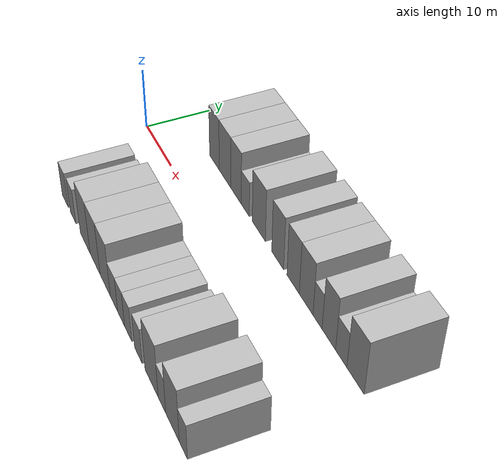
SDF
<sdf version="1.6">
 <world name="default">
  <model name="building_1">
   <static>1</static>
   <pose>11.8167 11.0000 0 0.000000 0.000000 1.570796</pose>
   <link name="link">
    <pose>0 0 4.50 0 0 0</pose>
    <collision name="collision"><geometry><box><size>10.0000 3.6334 9.0000</size></box></geometry></collision>
    <visual name="visual">
     <cast_shadows>0</cast_shadows>
     <geometry><box><size>10.0000 3.6334 9.0000</size></box></geometry>
     <material>
      <script>
       <uri>model://HANNAS_wall/materials/scripts</uri>
       <uri>model://HANNAS_wall/materials/textures</uri>
       <name>vrc/HANNAS_wall</name>
      </script>
     </material>
    </visual>
   </link>
  </model>
  <model name="building_2">
   <static>1</static>
   <pose>15.7360 11.0000 0 0.000000 0.000000 1.570796</pose>
   <link name="link">
    <pose>0 0 4.50 0 0 0</pose>
    <collision name="collision"><geometry><box><size>10.0000 4.2052 9.0000</size></box></geometry></collision>
    <visual name="visual">
     <cast_shadows>0</cast_shadows>
     <geometry><box><size>10.0000 4.2052 9.0000</size></box></geometry>
     <material>
      <script>
       <uri>model://HANNAS_wall/materials/scripts</uri>
       <uri>model://HANNAS_wall/materials/textures</uri>
       <name>vrc/HANNAS_wall</name>
      </script>
     </material>
    </visual>
   </link>
  </model>
  <model name="building_3">
   <static>1</static>
   <pose>19.6542 11.0000 0 0.000000 0.000000 1.570796</pose>
   <link name="link">
    <pose>0 0 4.50 0 0 0</pose>
    <collision name="collision"><geometry><box><size>10.0000 3.6313 9.0000</size></box></geometry></collision>
    <visual name="visual">
     <cast_shadows>0</cast_shadows>
     <geometry><box><size>10.0000 3.6313 9.0000</size></box></geometry>
     <material>
      <script>
       <uri>model://HANNAS_wall/materials/scripts</uri>
       <uri>model://HANNAS_wall/materials/textures</uri>
       <name>vrc/HANNAS_wall</name>
      </script>
     </material>
    </visual>
   </link>
  </model>
  <model name="building_4">
   <static>1</static>
   <pose>22.8331 11.0000 0 0.000000 0.000000 1.570796</pose>
   <link name="link">
    <pose>0 0 3.00 0 0 0</pose>
    <collision name="collision"><geometry><box><size>10.0000 2.7264 6.0000</size></box></geometry></collision>
    <visual name="visual">
     <cast_shadows>0</cast_shadows>
     <geometry><box><size>10.0000 2.7264 6.0000</size></box></geometry>
     <material>
      <script>
       <uri>model://HANNAS_wall/materials/scripts</uri>
       <uri>model://HANNAS_wall/materials/textures</uri>
       <name>vrc/HANNAS_wall</name>
      </script>
     </material>
    </visual>
   </link>
  </model>
  <model name="building_5">
   <static>1</static>
   <pose>27.3559 11.0000 0 0.000000 0.000000 1.570796</pose>
   <link name="link">
    <pose>0 0 4.50 0 0 0</pose>
    <collision name="collision"><geometry><box><size>10.0000 4.3192 9.0000</size></box></geometry></collision>
    <visual name="visual">
     <cast_shadows>0</cast_shadows>
     <geometry><box><size>10.0000 4.3192 9.0000</size></box></geometry>
     <material>
      <script>
       <uri>model://HANNAS_wall/materials/scripts</uri>
       <uri>model://HANNAS_wall/materials/textures</uri>
       <name>vrc/HANNAS_wall</name>
      </script>
     </material>
    </visual>
   </link>
  </model>
  <model name="building_6">
   <static>1</static>
   <pose>33.3677 11.0000 0 0.000000 0.000000 1.570796</pose>
   <link name="link">
    <pose>0 0 4.50 0 0 0</pose>
    <collision name="collision"><geometry><box><size>10.0000 3.7043 9.0000</size></box></geometry></collision>
    <visual name="visual">
     <cast_shadows>0</cast_shadows>
     <geometry><box><size>10.0000 3.7043 9.0000</size></box></geometry>
     <material>
      <script>
       <uri>model://HANNAS_wall/materials/scripts</uri>
       <uri>model://HANNAS_wall/materials/textures</uri>
       <name>vrc/HANNAS_wall</name>
      </script>
     </material>
    </visual>
   </link>
  </model>
  <model name="building_7">
   <static>1</static>
   <pose>38.0490 11.0000 0 0.000000 0.000000 1.570796</pose>
   <link name="link">
    <pose>0 0 4.50 0 0 0</pose>
    <collision name="collision"><geometry><box><size>10.0000 3.6584 9.0000</size></box></geometry></collision>
    <visual name="visual">
     <cast_shadows>0</cast_shadows>
     <geometry><box><size>10.0000 3.6584 9.0000</size></box></geometry>
     <material>
      <script>
       <uri>model://HANNAS_wall/materials/scripts</uri>
       <uri>model://HANNAS_wall/materials/textures</uri>
       <name>vrc/HANNAS_wall</name>
      </script>
     </material>
    </visual>
   </link>
  </model>
  <model name="building_8">
   <static>1</static>
   <pose>41.8445 11.0000 0 0.000000 0.000000 1.570796</pose>
   <link name="link">
    <pose>0 0 4.50 0 0 0</pose>
    <collision name="collision"><geometry><box><size>10.0000 3.9326 9.0000</size></box></geometry></collision>
    <visual name="visual">
     <cast_shadows>0</cast_shadows>
     <geometry><box><size>10.0000 3.9326 9.0000</size></box></geometry>
     <material>
      <script>
       <uri>model://HANNAS_wall/materials/scripts</uri>
       <uri>model://HANNAS_wall/materials/textures</uri>
       <name>vrc/HANNAS_wall</name>
      </script>
     </material>
    </visual>
   </link>
  </model>
  <model name="building_9">
   <static>1</static>
   <pose>45.0715 11.0000 0 0.000000 0.000000 1.570796</pose>
   <link name="link">
    <pose>0 0 3.00 0 0 0</pose>
    <collision name="collision"><geometry><box><size>10.0000 2.5213 6.0000</size></box></geometry></collision>
    <visual name="visual">
     <cast_shadows>0</cast_shadows>
     <geometry><box><size>10.0000 2.5213 6.0000</size></box></geometry>
     <material>
      <script>
       <uri>model://HANNAS_wall/materials/scripts</uri>
       <uri>model://HANNAS_wall/materials/textures</uri>
       <name>vrc/HANNAS_wall</name>
      </script>
     </material>
    </visual>
   </link>
  </model>
  <model name="building_10">
   <static>1</static>
   <pose>48.1417 11.0000 0 0.000000 0.000000 1.570796</pose>
   <link name="link">
    <pose>0 0 4.50 0 0 0</pose>
    <collision name="collision"><geometry><box><size>10.0000 3.6191 9.0000</size></box></geometry></collision>
    <visual name="visual">
     <cast_shadows>0</cast_shadows>
     <geometry><box><size>10.0000 3.6191 9.0000</size></box></geometry>
     <material>
      <script>
       <uri>model://HANNAS_wall/materials/scripts</uri>
       <uri>model://HANNAS_wall/materials/textures</uri>
       <name>vrc/HANNAS_wall</name>
      </script>
     </material>
    </visual>
   </link>
  </model>
  <model name="building_11">
   <static>1</static>
   <pose>51.4159 11.0000 0 0.000000 0.000000 1.570796</pose>
   <link name="link">
    <pose>0 0 3.00 0 0 0</pose>
    <collision name="collision"><geometry><box><size>10.0000 2.9294 6.0000</size></box></geometry></collision>
    <visual name="visual">
     <cast_shadows>0</cast_shadows>
     <geometry><box><size>10.0000 2.9294 6.0000</size></box></geometry>
     <material>
      <script>
       <uri>model://HANNAS_wall/materials/scripts</uri>
       <uri>model://HANNAS_wall/materials/textures</uri>
       <name>vrc/HANNAS_wall</name>
      </script>
     </material>
    </visual>
   </link>
  </model>
  <model name="building_12">
   <static>1</static>
   <pose>55.0609 11.0000 0 0.000000 0.000000 1.570796</pose>
   <link name="link">
    <pose>0 0 4.50 0 0 0</pose>
    <collision name="collision"><geometry><box><size>10.0000 4.3606 9.0000</size></box></geometry></collision>
    <visual name="visual">
     <cast_shadows>0</cast_shadows>
     <geometry><box><size>10.0000 4.3606 9.0000</size></box></geometry>
     <material>
      <script>
       <uri>model://HANNAS_wall/materials/scripts</uri>
       <uri>model://HANNAS_wall/materials/textures</uri>
       <name>vrc/HANNAS_wall</name>
      </script>
     </material>
    </visual>
   </link>
  </model>
  <model name="building_51">
   <static>1</static>
   <pose>11.3902 -11.0000 0 0.000000 0.000000 1.570796</pose>
   <link name="link">
    <pose>0 0 3.00 0 0 0</pose>
    <collision name="collision"><geometry><box><size>10.0000 2.7803 6.0000</size></box></geometry></collision>
    <visual name="visual">
     <cast_shadows>0</cast_shadows>
     <geometry><box><size>10.0000 2.7803 6.0000</size></box></geometry>
     <material>
      <script>
       <uri>model://HANNAS_wall/materials/scripts</uri>
       <uri>model://HANNAS_wall/materials/textures</uri>
       <name>vrc/HANNAS_wall</name>
      </script>
     </material>
    </visual>
   </link>
  </model>
  <model name="building_52">
   <static>1</static>
   <pose>15.0646 -11.0000 0 0.000000 0.000000 1.570796</pose>
   <link name="link">
    <pose>0 0 3.00 0 0 0</pose>
    <collision name="collision"><geometry><box><size>10.0000 2.5684 6.0000</size></box></geometry></collision>
    <visual name="visual">
     <cast_shadows>0</cast_shadows>
     <geometry><box><size>10.0000 2.5684 6.0000</size></box></geometry>
     <material>
      <script>
       <uri>model://HANNAS_wall/materials/scripts</uri>
       <uri>model://HANNAS_wall/materials/textures</uri>
       <name>vrc/HANNAS_wall</name>
      </script>
     </material>
    </visual>
   </link>
  </model>
  <model name="building_53">
   <static>1</static>
   <pose>20.4821 -11.0000 0 0.000000 0.000000 1.570796</pose>
   <link name="link">
    <pose>0 0 4.50 0 0 0</pose>
    <collision name="collision"><geometry><box><size>10.0000 4.2666 9.0000</size></box></geometry></collision>
    <visual name="visual">
     <cast_shadows>0</cast_shadows>
     <geometry><box><size>10.0000 4.2666 9.0000</size></box></geometry>
     <material>
      <script>
       <uri>model://HANNAS_wall/materials/scripts</uri>
       <uri>model://HANNAS_wall/materials/textures</uri>
       <name>vrc/HANNAS_wall</name>
      </script>
     </material>
    </visual>
   </link>
  </model>
  <model name="building_54">
   <static>1</static>
   <pose>24.7243 -11.0000 0 0.000000 0.000000 1.570796</pose>
   <link name="link">
    <pose>0 0 4.50 0 0 0</pose>
    <collision name="collision"><geometry><box><size>10.0000 4.2177 9.0000</size></box></geometry></collision>
    <visual name="visual">
     <cast_shadows>0</cast_shadows>
     <geometry><box><size>10.0000 4.2177 9.0000</size></box></geometry>
     <material>
      <script>
       <uri>model://HANNAS_wall/materials/scripts</uri>
       <uri>model://HANNAS_wall/materials/textures</uri>
       <name>vrc/HANNAS_wall</name>
      </script>
     </material>
    </visual>
   </link>
  </model>
  <model name="building_55">
   <static>1</static>
   <pose>28.8939 -11.0000 0 0.000000 0.000000 1.570796</pose>
   <link name="link">
    <pose>0 0 4.50 0 0 0</pose>
    <collision name="collision"><geometry><box><size>10.0000 4.1216 9.0000</size></box></geometry></collision>
    <visual name="visual">
     <cast_shadows>0</cast_shadows>
     <geometry><box><size>10.0000 4.1216 9.0000</size></box></geometry>
     <material>
      <script>
       <uri>model://HANNAS_wall/materials/scripts</uri>
       <uri>model://HANNAS_wall/materials/textures</uri>
       <name>vrc/HANNAS_wall</name>
      </script>
     </material>
    </visual>
   </link>
  </model>
  <model name="building_56">
   <static>1</static>
   <pose>32.3913 -11.0000 0 0.000000 0.000000 1.570796</pose>
   <link name="link">
    <pose>0 0 3.00 0 0 0</pose>
    <collision name="collision"><geometry><box><size>10.0000 2.8733 6.0000</size></box></geometry></collision>
    <visual name="visual">
     <cast_shadows>0</cast_shadows>
     <geometry><box><size>10.0000 2.8733 6.0000</size></box></geometry>
     <material>
      <script>
       <uri>model://HANNAS_wall/materials/scripts</uri>
       <uri>model://HANNAS_wall/materials/textures</uri>
       <name>vrc/HANNAS_wall</name>
      </script>
     </material>
    </visual>
   </link>
  </model>
  <model name="building_57">
   <static>1</static>
   <pose>35.1243 -11.0000 0 0.000000 0.000000 1.570796</pose>
   <link name="link">
    <pose>0 0 3.00 0 0 0</pose>
    <collision name="collision"><geometry><box><size>10.0000 2.5926 6.0000</size></box></geometry></collision>
    <visual name="visual">
     <cast_shadows>0</cast_shadows>
     <geometry><box><size>10.0000 2.5926 6.0000</size></box></geometry>
     <material>
      <script>
       <uri>model://HANNAS_wall/materials/scripts</uri>
       <uri>model://HANNAS_wall/materials/textures</uri>
       <name>vrc/HANNAS_wall</name>
      </script>
     </material>
    </visual>
   </link>
  </model>
  <model name="building_58">
   <static>1</static>
   <pose>37.7708 -11.0000 0 0.000000 0.000000 1.570796</pose>
   <link name="link">
    <pose>0 0 3.00 0 0 0</pose>
    <collision name="collision"><geometry><box><size>10.0000 2.7005 6.0000</size></box></geometry></collision>
    <visual name="visual">
     <cast_shadows>0</cast_shadows>
     <geometry><box><size>10.0000 2.7005 6.0000</size></box></geometry>
     <material>
      <script>
       <uri>model://HANNAS_wall/materials/scripts</uri>
       <uri>model://HANNAS_wall/materials/textures</uri>
       <name>vrc/HANNAS_wall</name>
      </script>
     </material>
    </visual>
   </link>
  </model>
  <model name="building_59">
   <static>1</static>
   <pose>41.4705 -11.0000 0 0.000000 0.000000 1.570796</pose>
   <link name="link">
    <pose>0 0 3.00 0 0 0</pose>
    <collision name="collision"><geometry><box><size>10.0000 2.6989 6.0000</size></box></geometry></collision>
    <visual name="visual">
     <cast_shadows>0</cast_shadows>
     <geometry><box><size>10.0000 2.6989 6.0000</size></box></geometry>
     <material>
      <script>
       <uri>model://HANNAS_wall/materials/scripts</uri>
       <uri>model://HANNAS_wall/materials/textures</uri>
       <name>vrc/HANNAS_wall</name>
      </script>
     </material>
    </visual>
   </link>
  </model>
  <model name="building_60">
   <static>1</static>
   <pose>46.0555 -11.0000 0 0.000000 0.000000 1.570796</pose>
   <link name="link">
    <pose>0 0 4.50 0 0 0</pose>
    <collision name="collision"><geometry><box><size>10.0000 4.4712 9.0000</size></box></geometry></collision>
    <visual name="visual">
     <cast_shadows>0</cast_shadows>
     <geometry><box><size>10.0000 4.4712 9.0000</size></box></geometry>
     <material>
      <script>
       <uri>model://HANNAS_wall/materials/scripts</uri>
       <uri>model://HANNAS_wall/materials/textures</uri>
       <name>vrc/HANNAS_wall</name>
      </script>
     </material>
    </visual>
   </link>
  </model>
  <model name="building_61">
   <static>1</static>
   <pose>49.5337 -11.0000 0 0.000000 0.000000 1.570796</pose>
   <link name="link">
    <pose>0 0 3.00 0 0 0</pose>
    <collision name="collision"><geometry><box><size>10.0000 2.4851 6.0000</size></box></geometry></collision>
    <visual name="visual">
     <cast_shadows>0</cast_shadows>
     <geometry><box><size>10.0000 2.4851 6.0000</size></box></geometry>
     <material>
      <script>
       <uri>model://HANNAS_wall/materials/scripts</uri>
       <uri>model://HANNAS_wall/materials/textures</uri>
       <name>vrc/HANNAS_wall</name>
      </script>
     </material>
    </visual>
   </link>
  </model>
  <model name="building_62">
   <static>1</static>
   <pose>52.9226 -11.0000 0 0.000000 0.000000 1.570796</pose>
   <link name="link">
    <pose>0 0 4.50 0 0 0</pose>
    <collision name="collision"><geometry><box><size>10.0000 4.2927 9.0000</size></box></geometry></collision>
    <visual name="visual">
     <cast_shadows>0</cast_shadows>
     <geometry><box><size>10.0000 4.2927 9.0000</size></box></geometry>
     <material>
      <script>
       <uri>model://HANNAS_wall/materials/scripts</uri>
       <uri>model://HANNAS_wall/materials/textures</uri>
       <name>vrc/HANNAS_wall</name>
      </script>
     </material>
    </visual>
   </link>
  </model>
  <model name="building_63">
   <static>1</static>
   <pose>56.3166 -11.0000 0 0.000000 0.000000 1.570796</pose>
   <link name="link">
    <pose>0 0 3.00 0 0 0</pose>
    <collision name="collision"><geometry><box><size>10.0000 2.4952 6.0000</size></box></geometry></collision>
    <visual name="visual">
     <cast_shadows>0</cast_shadows>
     <geometry><box><size>10.0000 2.4952 6.0000</size></box></geometry>
     <material>
      <script>
       <uri>model://HANNAS_wall/materials/scripts</uri>
       <uri>model://HANNAS_wall/materials/textures</uri>
       <name>vrc/HANNAS_wall</name>
      </script>
     </material>
    </visual>
   </link>
  </model>
 </world>
</sdf>
